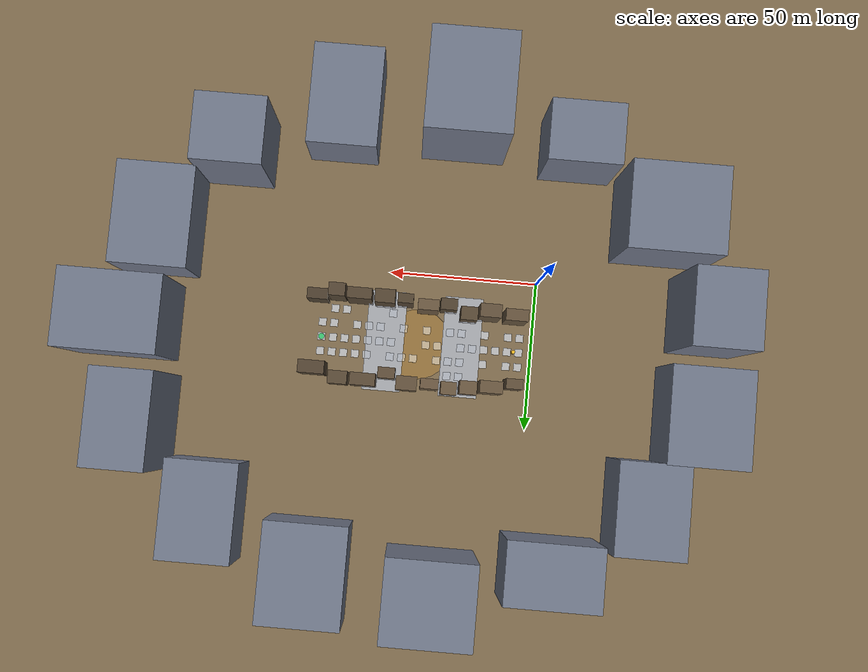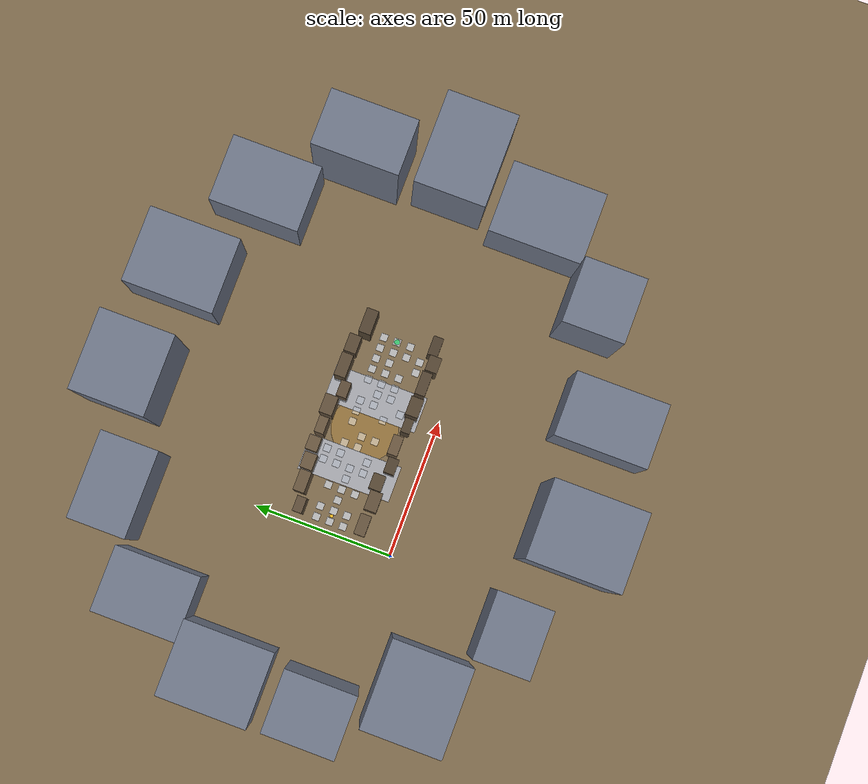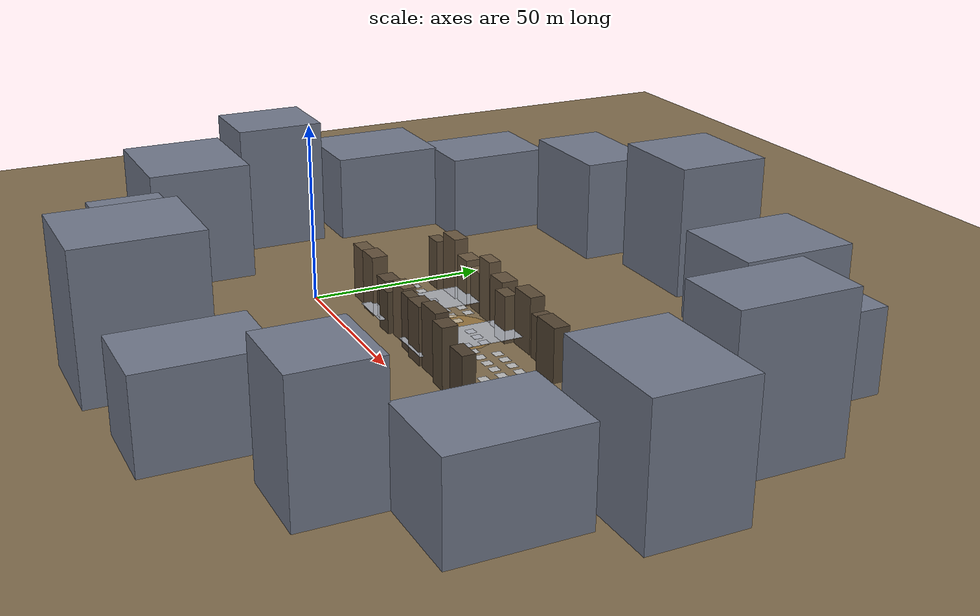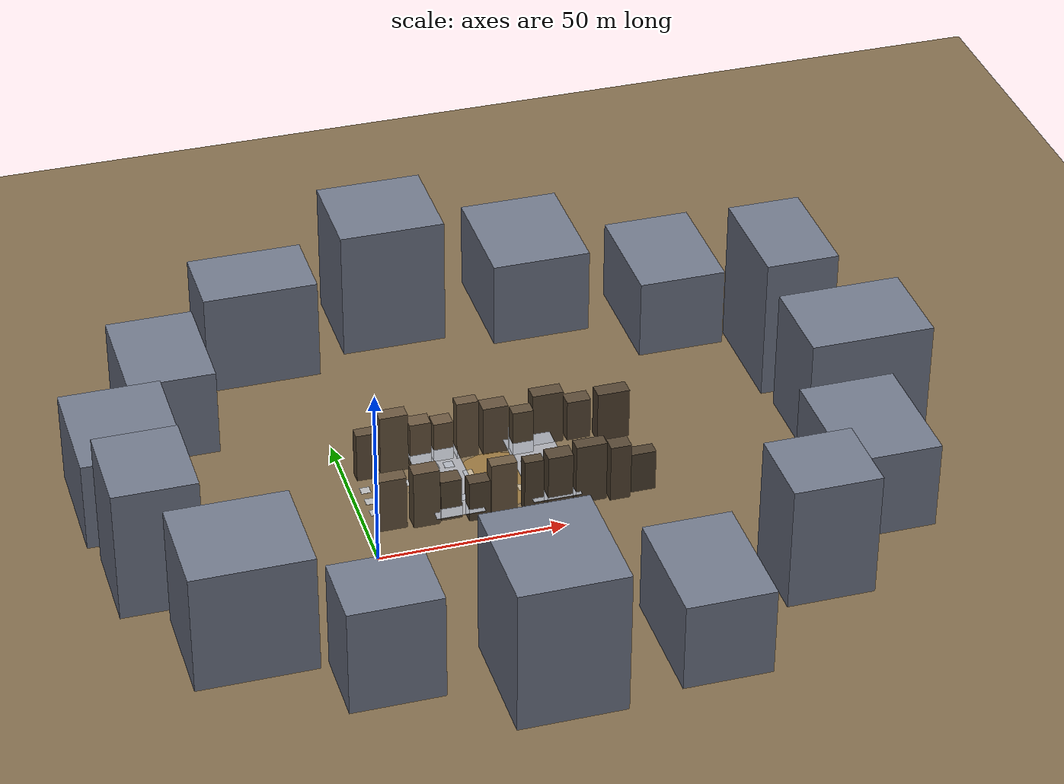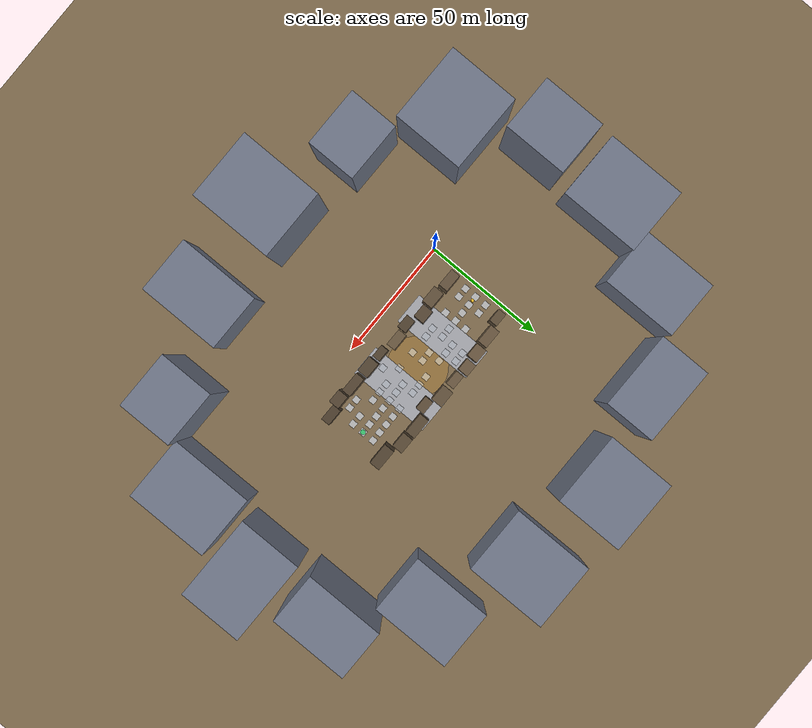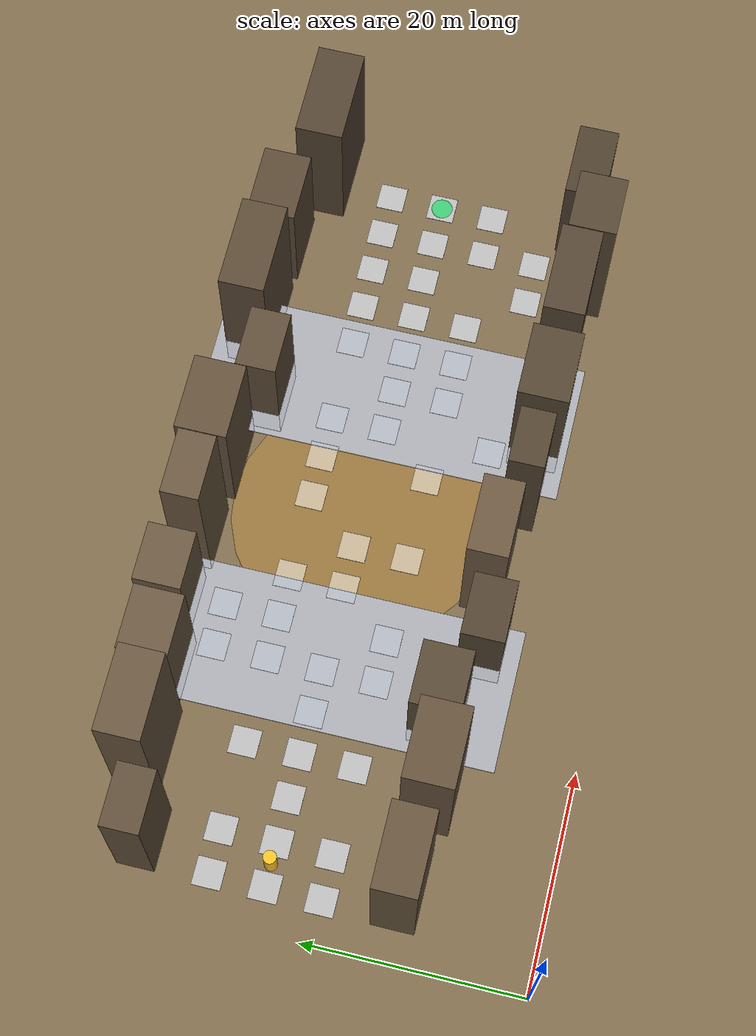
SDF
<sdf version="1.6">
 <world name="canyon">
  <gravity>0 0 -9.81</gravity>
  <scene>
   <ambient>0.5 0.52 0.55 1</ambient>
   <background>0.66 0.70 0.76 1</background>
   <shadows>true</shadows>
   <fog>
    <color>0.66 0.70 0.76 1</color>
    <type>linear</type>
    <start>16</start>
    <end>90</end>
    <density>0.05</density>
   </fog>
  </scene>
  <light name="sun" type="directional">
   <pose>0 0 40 0 0 0</pose>
   <diffuse>0.9 0.9 0.9 1</diffuse>
   <specular>0.2 0.2 0.2 1</specular>
   <direction>-0.4 0.3 -0.9</direction>
  </light>
  <model name="ground">
   <static>true</static>
   <link name="link">
    <collision name="c"><geometry><plane><normal>0 0 1</normal><size>400 400</size></plane></geometry></collision>
    <visual name="v">
     <geometry><plane><normal>0 0 1</normal><size>400 400</size></plane></geometry>
     <material><ambient>0.5 0.42 0.3</ambient><diffuse>0.5 0.42 0.3</diffuse></material>
    </visual>
   </link>
  </model>
  <model name="mtn0">
   <static>true</static>
   <pose>137.000 24.000 17.208 0 0 0</pose>
   <link name="l">
    <collision name="c">
     <geometry><box><size>33.62708577581435 25.573056538311704 34.41625981408046</size></box></geometry>
    </collision>
    <visual name="v">
     <geometry><box><size>33.62708577581435 25.573056538311704 34.41625981408046</size></box></geometry>
     <material><ambient>0.44 0.47 0.54 1</ambient><diffuse>0.44 0.47 0.54 1</diffuse></material>
    </visual>
   </link>
  </model>
  <model name="mtn1">
   <static>true</static>
   <pose>128.527 57.352 20.409 0 0 0</pose>
   <link name="l">
    <collision name="c">
     <geometry><box><size>20.093757560108525 31.246686860881958 40.81746338865422</size></box></geometry>
    </collision>
    <visual name="v">
     <geometry><box><size>20.093757560108525 31.246686860881958 40.81746338865422</size></box></geometry>
     <material><ambient>0.44 0.47 0.54 1</ambient><diffuse>0.44 0.47 0.54 1</diffuse></material>
    </visual>
   </link>
  </model>
  <model name="mtn2">
   <static>true</static>
   <pose>104.575 84.938 11.490 0 0 0</pose>
   <link name="l">
    <collision name="c">
     <geometry><box><size>24.15700107375013 32.60809845479548 22.979418164290088</size></box></geometry>
    </collision>
    <visual name="v">
     <geometry><box><size>24.15700107375013 32.60809845479548 22.979418164290088</size></box></geometry>
     <material><ambient>0.44 0.47 0.54 1</ambient><diffuse>0.44 0.47 0.54 1</diffuse></material>
    </visual>
   </link>
  </model>
  <model name="mtn3">
   <static>true</static>
   <pose>69.284 101.987 12.482 0 0 0</pose>
   <link name="l">
    <collision name="c">
     <geometry><box><size>27.464059783188464 33.05515322057159 24.963242868238584</size></box></geometry>
    </collision>
    <visual name="v">
     <geometry><box><size>27.464059783188464 33.05515322057159 24.963242868238584</size></box></geometry>
     <material><ambient>0.44 0.47 0.54 1</ambient><diffuse>0.44 0.47 0.54 1</diffuse></material>
    </visual>
   </link>
  </model>
  <model name="mtn4">
   <static>true</static>
   <pose>28.756 105.551 18.709 0 0 0</pose>
   <link name="l">
    <collision name="c">
     <geometry><box><size>29.100050304354216 26.85661630251999 37.41788751098236</size></box></geometry>
    </collision>
    <visual name="v">
     <geometry><box><size>29.100050304354216 26.85661630251999 37.41788751098236</size></box></geometry>
     <material><ambient>0.44 0.47 0.54 1</ambient><diffuse>0.44 0.47 0.54 1</diffuse></material>
    </visual>
   </link>
  </model>
  <model name="mtn5">
   <static>true</static>
   <pose>-10.000 95.014 14.680 0 0 0</pose>
   <link name="l">
    <collision name="c">
     <geometry><box><size>31.36055062037382 20.82549892988621 29.35941411119095</size></box></geometry>
    </collision>
    <visual name="v">
     <geometry><box><size>31.36055062037382 20.82549892988621 29.35941411119095</size></box></geometry>
     <material><ambient>0.44 0.47 0.54 1</ambient><diffuse>0.44 0.47 0.54 1</diffuse></material>
    </visual>
   </link>
  </model>
  <model name="mtn6">
   <static>true</static>
   <pose>-40.284 72.198 12.530 0 0 0</pose>
   <link name="l">
    <collision name="c">
     <geometry><box><size>23.468262365928783 30.710834222493787 25.060907175114885</size></box></geometry>
    </collision>
    <visual name="v">
     <geometry><box><size>23.468262365928783 30.710834222493787 25.060907175114885</size></box></geometry>
     <material><ambient>0.44 0.47 0.54 1</ambient><diffuse>0.44 0.47 0.54 1</diffuse></material>
    </visual>
   </link>
  </model>
  <model name="mtn7">
   <static>true</static>
   <pose>-56.858 41.049 12.695 0 0 0</pose>
   <link name="l">
    <collision name="c">
     <geometry><box><size>27.069270103609107 32.42358545844061 25.38981370130442</size></box></geometry>
    </collision>
    <visual name="v">
     <geometry><box><size>27.069270103609107 32.42358545844061 25.38981370130442</size></box></geometry>
     <material><ambient>0.44 0.47 0.54 1</ambient><diffuse>0.44 0.47 0.54 1</diffuse></material>
    </visual>
   </link>
  </model>
  <model name="mtn8">
   <static>true</static>
   <pose>-56.858 6.951 18.651 0 0 0</pose>
   <link name="l">
    <collision name="c">
     <geometry><box><size>22.086840507969438 25.535729628198563 37.301519949549174</size></box></geometry>
    </collision>
    <visual name="v">
     <geometry><box><size>22.086840507969438 25.535729628198563 37.301519949549174</size></box></geometry>
     <material><ambient>0.44 0.47 0.54 1</ambient><diffuse>0.44 0.47 0.54 1</diffuse></material>
    </visual>
   </link>
  </model>
  <model name="mtn9">
   <static>true</static>
   <pose>-40.284 -24.198 16.825 0 0 0</pose>
   <link name="l">
    <collision name="c">
     <geometry><box><size>31.477350154209745 28.709685678196838 33.65045452618929</size></box></geometry>
    </collision>
    <visual name="v">
     <geometry><box><size>31.477350154209745 28.709685678196838 33.65045452618929</size></box></geometry>
     <material><ambient>0.44 0.47 0.54 1</ambient><diffuse>0.44 0.47 0.54 1</diffuse></material>
    </visual>
   </link>
  </model>
  <model name="mtn10">
   <static>true</static>
   <pose>-10.000 -47.014 14.957 0 0 0</pose>
   <link name="l">
    <collision name="c">
     <geometry><box><size>24.36838257644251 20.199187913192404 29.91423781848683</size></box></geometry>
    </collision>
    <visual name="v">
     <geometry><box><size>24.36838257644251 20.199187913192404 29.91423781848683</size></box></geometry>
     <material><ambient>0.44 0.47 0.54 1</ambient><diffuse>0.44 0.47 0.54 1</diffuse></material>
    </visual>
   </link>
  </model>
  <model name="mtn11">
   <static>true</static>
   <pose>28.756 -57.551 20.137 0 0 0</pose>
   <link name="l">
    <collision name="c">
     <geometry><box><size>28.23786906837271 33.28913602947771 40.27437584584879</size></box></geometry>
    </collision>
    <visual name="v">
     <geometry><box><size>28.23786906837271 33.28913602947771 40.27437584584879</size></box></geometry>
     <material><ambient>0.44 0.47 0.54 1</ambient><diffuse>0.44 0.47 0.54 1</diffuse></material>
    </visual>
   </link>
  </model>
  <model name="mtn12">
   <static>true</static>
   <pose>69.284 -53.987 12.336 0 0 0</pose>
   <link name="l">
    <collision name="c">
     <geometry><box><size>23.357127503681948 33.48454281872263 24.671474519663416</size></box></geometry>
    </collision>
    <visual name="v">
     <geometry><box><size>23.357127503681948 33.48454281872263 24.671474519663416</size></box></geometry>
     <material><ambient>0.44 0.47 0.54 1</ambient><diffuse>0.44 0.47 0.54 1</diffuse></material>
    </visual>
   </link>
  </model>
  <model name="mtn13">
   <static>true</static>
   <pose>104.575 -36.938 17.583 0 0 0</pose>
   <link name="l">
    <collision name="c">
     <geometry><box><size>23.379449526681093 22.11626155236947 35.16540045764886</size></box></geometry>
    </collision>
    <visual name="v">
     <geometry><box><size>23.379449526681093 22.11626155236947 35.16540045764886</size></box></geometry>
     <material><ambient>0.44 0.47 0.54 1</ambient><diffuse>0.44 0.47 0.54 1</diffuse></material>
    </visual>
   </link>
  </model>
  <model name="mtn14">
   <static>true</static>
   <pose>128.527 -9.352 12.371 0 0 0</pose>
   <link name="l">
    <collision name="c">
     <geometry><box><size>25.917975487048626 33.92912365366834 24.742579242330923</size></box></geometry>
    </collision>
    <visual name="v">
     <geometry><box><size>25.917975487048626 33.92912365366834 24.742579242330923</size></box></geometry>
     <material><ambient>0.44 0.47 0.54 1</ambient><diffuse>0.44 0.47 0.54 1</diffuse></material>
    </visual>
   </link>
  </model>
  <model name="wall0">
   <static>true</static>
   <pose>6.734 12.561 7.846 0 0 0</pose>
   <link name="l">
    <collision name="c">
     <geometry><box><size>7.4685659066798085 3.9129744395921193 15.691238074463357</size></box></geometry>
    </collision>
    <visual name="v">
     <geometry><box><size>7.4685659066798085 3.9129744395921193 15.691238074463357</size></box></geometry>
     <material>
      <ambient>0.39727526522324585 0.3257657174830616 0.2383651591339475 1</ambient>
      <diffuse>0.39727526522324585 0.3257657174830616 0.2383651591339475 1</diffuse>
     </material>
    </visual>
   </link>
  </model>
  <model name="wall1">
   <static>true</static>
   <pose>15.534 11.935 8.433 0 0 0</pose>
   <link name="l">
    <collision name="c">
     <geometry><box><size>7.082239310762457 4.456064865458245 16.86549293572219</size></box></geometry>
    </collision>
    <visual name="v">
     <geometry><box><size>7.082239310762457 4.456064865458245 16.86549293572219</size></box></geometry>
     <material>
      <ambient>0.38435871781861297 0.31517414861126264 0.23061523069116777 1</ambient>
      <diffuse>0.38435871781861297 0.31517414861126264 0.23061523069116777 1</diffuse>
     </material>
    </visual>
   </link>
  </model>
  <model name="wall2">
   <static>true</static>
   <pose>22.358 12.988 6.044 0 0 0</pose>
   <link name="l">
    <collision name="c">
     <geometry><box><size>5.677168756054198 4.493604080861285 12.08798425679653</size></box></geometry>
    </collision>
    <visual name="v">
     <geometry><box><size>5.677168756054198 4.493604080861285 12.08798425679653</size></box></geometry>
     <material>
      <ambient>0.3422740025250744 0.280664682070561 0.20536440151504462 1</ambient>
      <diffuse>0.3422740025250744 0.280664682070561 0.20536440151504462 1</diffuse>
     </material>
    </visual>
   </link>
  </model>
  <model name="wall3">
   <static>true</static>
   <pose>29.326 10.441 5.915 0 0 0</pose>
   <link name="l">
    <collision name="c">
     <geometry><box><size>5.676948280539545 3.8818326472968767 11.830518253238814</size></box></geometry>
    </collision>
    <visual name="v">
     <geometry><box><size>5.676948280539545 3.8818326472968767 11.830518253238814</size></box></geometry>
     <material>
      <ambient>0.31551927371789146 0.258725804448671 0.18931156423073486 1</ambient>
      <diffuse>0.31551927371789146 0.258725804448671 0.18931156423073486 1</diffuse>
     </material>
    </visual>
   </link>
  </model>
  <model name="wall4">
   <static>true</static>
   <pose>36.245 11.588 7.641 0 0 0</pose>
   <link name="l">
    <collision name="c">
     <geometry><box><size>7.030160569112029 3.636519156568742 15.282166505052773</size></box></geometry>
    </collision>
    <visual name="v">
     <geometry><box><size>7.030160569112029 3.636519156568742 15.282166505052773</size></box></geometry>
     <material>
      <ambient>0.4180317708447288 0.3427860520926776 0.2508190625068373 1</ambient>
      <diffuse>0.4180317708447288 0.3427860520926776 0.2508190625068373 1</diffuse>
     </material>
    </visual>
   </link>
  </model>
  <model name="wall5">
   <static>true</static>
   <pose>43.949 10.113 7.709 0 0 0</pose>
   <link name="l">
    <collision name="c">
     <geometry><box><size>5.220341781744004 3.18101894535966 15.418232116284063</size></box></geometry>
    </collision>
    <visual name="v">
     <geometry><box><size>5.220341781744004 3.18101894535966 15.418232116284063</size></box></geometry>
     <material>
      <ambient>0.319702007143858 0.2621556458579635 0.1918212042863148 1</ambient>
      <diffuse>0.319702007143858 0.2621556458579635 0.1918212042863148 1</diffuse>
     </material>
    </visual>
   </link>
  </model>
  <model name="wall6">
   <static>true</static>
   <pose>50.833 9.989 8.036 0 0 0</pose>
   <link name="l">
    <collision name="c">
     <geometry><box><size>6.757701962871293 4.554039063383198 16.0712569386836</size></box></geometry>
    </collision>
    <visual name="v">
     <geometry><box><size>6.757701962871293 4.554039063383198 16.0712569386836</size></box></geometry>
     <material>
      <ambient>0.3268361314222216 0.2680056277662217 0.19610167885333296 1</ambient>
      <diffuse>0.3268361314222216 0.2680056277662217 0.19610167885333296 1</diffuse>
     </material>
    </visual>
   </link>
  </model>
  <model name="wall7">
   <static>true</static>
   <pose>59.299 9.925 8.831 0 0 0</pose>
   <link name="l">
    <collision name="c">
     <geometry><box><size>8.299724682569519 3.6884307800559695 17.661967744755508</size></box></geometry>
    </collision>
    <visual name="v">
     <geometry><box><size>8.299724682569519 3.6884307800559695 17.661967744755508</size></box></geometry>
     <material>
      <ambient>0.3284401142654181 0.26932089369764284 0.19706406855925085 1</ambient>
      <diffuse>0.3284401142654181 0.26932089369764284 0.19706406855925085 1</diffuse>
     </material>
    </visual>
   </link>
  </model>
  <model name="wall8">
   <static>true</static>
   <pose>66.910 9.129 8.283 0 0 0</pose>
   <link name="l">
    <collision name="c">
     <geometry><box><size>5.5760659301099595 4.344638200037168 16.56541865630666</size></box></geometry>
    </collision>
    <visual name="v">
     <geometry><box><size>5.5760659301099595 4.344638200037168 16.56541865630666</size></box></geometry>
     <material>
      <ambient>0.33047419392604216 0.27098883901935455 0.1982845163556253 1</ambient>
      <diffuse>0.33047419392604216 0.27098883901935455 0.1982845163556253 1</diffuse>
     </material>
    </visual>
   </link>
  </model>
  <model name="wall9">
   <static>true</static>
   <pose>73.617 10.586 5.940 0 0 0</pose>
   <link name="l">
    <collision name="c">
     <geometry><box><size>6.912769464188612 3.6557295062686297 11.879155341150454</size></box></geometry>
    </collision>
    <visual name="v">
     <geometry><box><size>6.912769464188612 3.6557295062686297 11.879155341150454</size></box></geometry>
     <material>
      <ambient>0.3001821223331606 0.2461493403131917 0.18010927339989635 1</ambient>
      <diffuse>0.3001821223331606 0.2461493403131917 0.18010927339989635 1</diffuse>
     </material>
    </visual>
   </link>
  </model>
  <model name="wall10">
   <static>true</static>
   <pose>5.783 35.313 7.141 0 0 0</pose>
   <link name="l">
    <collision name="c">
     <geometry><box><size>5.565114522587271 3.3983146545459935 14.281392176706083</size></box></geometry>
    </collision>
    <visual name="v">
     <geometry><box><size>5.565114522587271 3.3983146545459935 14.281392176706083</size></box></geometry>
     <material>
      <ambient>0.37324337399848906 0.306059566678761 0.22394602439909342 1</ambient>
      <diffuse>0.37324337399848906 0.306059566678761 0.22394602439909342 1</diffuse>
     </material>
    </visual>
   </link>
  </model>
  <model name="wall11">
   <static>true</static>
   <pose>13.549 37.103 8.746 0 0 0</pose>
   <link name="l">
    <collision name="c">
     <geometry><box><size>7.629716193407861 4.046209387184796 17.491018793072897</size></box></geometry>
    </collision>
    <visual name="v">
     <geometry><box><size>7.629716193407861 4.046209387184796 17.491018793072897</size></box></geometry>
     <material>
      <ambient>0.41085780340005174 0.33690339878804243 0.24651468204003102 1</ambient>
      <diffuse>0.41085780340005174 0.33690339878804243 0.24651468204003102 1</diffuse>
     </material>
    </visual>
   </link>
  </model>
  <model name="wall12">
   <static>true</static>
   <pose>20.873 37.791 6.694 0 0 0</pose>
   <link name="l">
    <collision name="c">
     <geometry><box><size>5.8023645461574125 4.480444232411182 13.388358716131368</size></box></geometry>
    </collision>
    <visual name="v">
     <geometry><box><size>5.8023645461574125 4.480444232411182 13.388358716131368</size></box></geometry>
     <material>
      <ambient>0.41649614543351354 0.3415268392554811 0.2498976872601081 1</ambient>
      <diffuse>0.41649614543351354 0.3415268392554811 0.2498976872601081 1</diffuse>
     </material>
    </visual>
   </link>
  </model>
  <model name="wall13">
   <static>true</static>
   <pose>27.297 38.495 5.916 0 0 0</pose>
   <link name="l">
    <collision name="c">
     <geometry><box><size>5.309855112330501 4.303146502372595 11.831230271849304</size></box></geometry>
    </collision>
    <visual name="v">
     <geometry><box><size>5.309855112330501 4.303146502372595 11.831230271849304</size></box></geometry>
     <material>
      <ambient>0.4161984878407404 0.3412827600294071 0.24971909270444426 1</ambient>
      <diffuse>0.4161984878407404 0.3412827600294071 0.24971909270444426 1</diffuse>
     </material>
    </visual>
   </link>
  </model>
  <model name="wall14">
   <static>true</static>
   <pose>33.880 37.756 8.632 0 0 0</pose>
   <link name="l">
    <collision name="c">
     <geometry><box><size>5.950760988211346 3.382744457835037 17.26365815791782</size></box></geometry>
    </collision>
    <visual name="v">
     <geometry><box><size>5.950760988211346 3.382744457835037 17.26365815791782</size></box></geometry>
     <material>
      <ambient>0.4149491005980416 0.3402582624903941 0.24896946035882495 1</ambient>
      <diffuse>0.4149491005980416 0.3402582624903941 0.24896946035882495 1</diffuse>
     </material>
    </visual>
   </link>
  </model>
  <model name="wall15">
   <static>true</static>
   <pose>41.478 38.084 7.246 0 0 0</pose>
   <link name="l">
    <collision name="c">
     <geometry><box><size>6.946676147761175 4.673202011245264 14.491550882584074</size></box></geometry>
    </collision>
    <visual name="v">
     <geometry><box><size>6.946676147761175 4.673202011245264 14.491550882584074</size></box></geometry>
     <material>
      <ambient>0.383448357929086 0.3144276535018505 0.2300690147574516 1</ambient>
      <diffuse>0.383448357929086 0.3144276535018505 0.2300690147574516 1</diffuse>
     </material>
    </visual>
   </link>
  </model>
  <model name="wall16">
   <static>true</static>
   <pose>48.373 35.200 6.643 0 0 0</pose>
   <link name="l">
    <collision name="c">
     <geometry><box><size>5.722474911209101 3.6437953970830934 13.286801033728516</size></box></geometry>
    </collision>
    <visual name="v">
     <geometry><box><size>5.722474911209101 3.6437953970830934 13.286801033728516</size></box></geometry>
     <material>
      <ambient>0.36816589763617574 0.3018960360616641 0.22089953858170544 1</ambient>
      <diffuse>0.36816589763617574 0.3018960360616641 0.22089953858170544 1</diffuse>
     </material>
    </visual>
   </link>
  </model>
  <model name="wall17">
   <static>true</static>
   <pose>55.997 38.018 7.893 0 0 0</pose>
   <link name="l">
    <collision name="c">
     <geometry><box><size>8.49439337883981 4.127649308462332 15.785860218483883</size></box></geometry>
    </collision>
    <visual name="v">
     <geometry><box><size>8.49439337883981 4.127649308462332 15.785860218483883</size></box></geometry>
     <material>
      <ambient>0.35557456948496885 0.29157114697767444 0.2133447416909813 1</ambient>
      <diffuse>0.35557456948496885 0.29157114697767444 0.2133447416909813 1</diffuse>
     </material>
    </visual>
   </link>
  </model>
  <model name="wall18">
   <static>true</static>
   <pose>64.541 37.959 6.029 0 0 0</pose>
   <link name="l">
    <collision name="c">
     <geometry><box><size>6.503570567354584 4.38732750404908 12.058272514927934</size></box></geometry>
    </collision>
    <visual name="v">
     <geometry><box><size>6.503570567354584 4.38732750404908 12.058272514927934</size></box></geometry>
     <material>
      <ambient>0.3485900015129721 0.2858438012406371 0.20915400090778324 1</ambient>
      <diffuse>0.3485900015129721 0.2858438012406371 0.20915400090778324 1</diffuse>
     </material>
    </visual>
   </link>
  </model>
  <model name="wall19">
   <static>true</static>
   <pose>73.347 35.309 7.383 0 0 0</pose>
   <link name="l">
    <collision name="c">
     <geometry><box><size>8.829186046494943 4.342710142345547 14.766244171261626</size></box></geometry>
    </collision>
    <visual name="v">
     <geometry><box><size>8.829186046494943 4.342710142345547 14.766244171261626</size></box></geometry>
     <material>
      <ambient>0.32324696517681606 0.26506251144498916 0.19394817910608964 1</ambient>
      <diffuse>0.32324696517681606 0.26506251144498916 0.19394817910608964 1</diffuse>
     </material>
    </visual>
   </link>
  </model>
  <model name="haze0">
   <static>true</static>
   <pose>50.000 24.000 3.60 0 0 0</pose>
   <link name="l">
    <visual name="v">
     <geometry><box><size>13.0 34.0 0.15</size></box></geometry>
     <material><ambient>0.72 0.74 0.78 0.88</ambient><diffuse>0.72 0.74 0.78 0.88</diffuse></material>
     <transparency>0.12</transparency>
    </visual>
   </link>
  </model>
  <model name="haze1">
   <static>true</static>
   <pose>24.000 24.000 3.60 0 0 0</pose>
   <link name="l">
    <visual name="v">
     <geometry><box><size>13.0 34.0 0.15</size></box></geometry>
     <material><ambient>0.72 0.74 0.78 0.88</ambient><diffuse>0.72 0.74 0.78 0.88</diffuse></material>
     <transparency>0.12</transparency>
    </visual>
   </link>
  </model>
  <model name="hard_patch">
   <static>true</static>
   <pose>39.000 24.000 0.03 0 0 0</pose>
   <link name="l">
    <visual name="v">
     <geometry><cylinder><radius>12.0</radius><length>0.3</length></cylinder></geometry>
     <material><ambient>0.96 0.62 0.04 0.14</ambient><diffuse>0.96 0.62 0.04 0.14</diffuse></material>
    </visual>
   </link>
  </model>
  <model name="aruco0">
   <static>true</static>
   <pose>4.000 19.000 0.02 0 0 0</pose>
   <link name="l">
    <visual name="v">
     <geometry><box><size>2.6 2.6 0.02</size></box></geometry>
     <material>
      <script><uri>file://materials/scripts</uri><uri>file://materials/textures</uri><name>aruco/0</name></script>
     </material>
    </visual>
   </link>
  </model>
  <model name="aruco1">
   <static>true</static>
   <pose>4.000 24.000 0.02 0 0 0</pose>
   <link name="l">
    <visual name="v">
     <geometry><box><size>2.6 2.6 0.02</size></box></geometry>
     <material>
      <script><uri>file://materials/scripts</uri><uri>file://materials/textures</uri><name>aruco/1</name></script>
     </material>
    </visual>
   </link>
  </model>
  <model name="aruco2">
   <static>true</static>
   <pose>4.000 29.000 0.02 0 0 0</pose>
   <link name="l">
    <visual name="v">
     <geometry><box><size>2.6 2.6 0.02</size></box></geometry>
     <material>
      <script><uri>file://materials/scripts</uri><uri>file://materials/textures</uri><name>aruco/2</name></script>
     </material>
    </visual>
   </link>
  </model>
  <model name="aruco3">
   <static>true</static>
   <pose>8.000 19.000 0.02 0 0 0</pose>
   <link name="l">
    <visual name="v">
     <geometry><box><size>2.6 2.6 0.02</size></box></geometry>
     <material>
      <script><uri>file://materials/scripts</uri><uri>file://materials/textures</uri><name>aruco/3</name></script>
     </material>
    </visual>
   </link>
  </model>
  <model name="aruco4">
   <static>true</static>
   <pose>8.000 24.000 0.02 0 0 0</pose>
   <link name="l">
    <visual name="v">
     <geometry><box><size>2.6 2.6 0.02</size></box></geometry>
     <material>
      <script><uri>file://materials/scripts</uri><uri>file://materials/textures</uri><name>aruco/4</name></script>
     </material>
    </visual>
   </link>
  </model>
  <model name="aruco5">
   <static>true</static>
   <pose>8.000 29.000 0.02 0 0 0</pose>
   <link name="l">
    <visual name="v">
     <geometry><box><size>2.6 2.6 0.02</size></box></geometry>
     <material>
      <script><uri>file://materials/scripts</uri><uri>file://materials/textures</uri><name>aruco/5</name></script>
     </material>
    </visual>
   </link>
  </model>
  <model name="aruco6">
   <static>true</static>
   <pose>12.000 24.000 0.02 0 0 0</pose>
   <link name="l">
    <visual name="v">
     <geometry><box><size>2.6 2.6 0.02</size></box></geometry>
     <material>
      <script><uri>file://materials/scripts</uri><uri>file://materials/textures</uri><name>aruco/6</name></script>
     </material>
    </visual>
   </link>
  </model>
  <model name="aruco7">
   <static>true</static>
   <pose>16.000 19.000 0.02 0 0 0</pose>
   <link name="l">
    <visual name="v">
     <geometry><box><size>2.6 2.6 0.02</size></box></geometry>
     <material>
      <script><uri>file://materials/scripts</uri><uri>file://materials/textures</uri><name>aruco/7</name></script>
     </material>
    </visual>
   </link>
  </model>
  <model name="aruco8">
   <static>true</static>
   <pose>16.000 24.000 0.02 0 0 0</pose>
   <link name="l">
    <visual name="v">
     <geometry><box><size>2.6 2.6 0.02</size></box></geometry>
     <material>
      <script><uri>file://materials/scripts</uri><uri>file://materials/textures</uri><name>aruco/8</name></script>
     </material>
    </visual>
   </link>
  </model>
  <model name="aruco9">
   <static>true</static>
   <pose>16.000 29.000 0.02 0 0 0</pose>
   <link name="l">
    <visual name="v">
     <geometry><box><size>2.6 2.6 0.02</size></box></geometry>
     <material>
      <script><uri>file://materials/scripts</uri><uri>file://materials/textures</uri><name>aruco/9</name></script>
     </material>
    </visual>
   </link>
  </model>
  <model name="aruco10">
   <static>true</static>
   <pose>20.000 24.000 0.02 0 0 0</pose>
   <link name="l">
    <visual name="v">
     <geometry><box><size>2.6 2.6 0.02</size></box></geometry>
     <material>
      <script><uri>file://materials/scripts</uri><uri>file://materials/textures</uri><name>aruco/10</name></script>
     </material>
    </visual>
   </link>
  </model>
  <model name="aruco11">
   <static>true</static>
   <pose>24.000 19.000 0.02 0 0 0</pose>
   <link name="l">
    <visual name="v">
     <geometry><box><size>2.6 2.6 0.02</size></box></geometry>
     <material>
      <script><uri>file://materials/scripts</uri><uri>file://materials/textures</uri><name>aruco/11</name></script>
     </material>
    </visual>
   </link>
  </model>
  <model name="aruco12">
   <static>true</static>
   <pose>24.000 24.000 0.02 0 0 0</pose>
   <link name="l">
    <visual name="v">
     <geometry><box><size>2.6 2.6 0.02</size></box></geometry>
     <material>
      <script><uri>file://materials/scripts</uri><uri>file://materials/textures</uri><name>aruco/12</name></script>
     </material>
    </visual>
   </link>
  </model>
  <model name="aruco13">
   <static>true</static>
   <pose>24.000 29.000 0.02 0 0 0</pose>
   <link name="l">
    <visual name="v">
     <geometry><box><size>2.6 2.6 0.02</size></box></geometry>
     <material>
      <script><uri>file://materials/scripts</uri><uri>file://materials/textures</uri><name>aruco/13</name></script>
     </material>
    </visual>
   </link>
  </model>
  <model name="aruco14">
   <static>true</static>
   <pose>24.000 34.000 0.02 0 0 0</pose>
   <link name="l">
    <visual name="v">
     <geometry><box><size>2.6 2.6 0.02</size></box></geometry>
     <material>
      <script><uri>file://materials/scripts</uri><uri>file://materials/textures</uri><name>aruco/14</name></script>
     </material>
    </visual>
   </link>
  </model>
  <model name="aruco15">
   <static>true</static>
   <pose>28.000 19.000 0.02 0 0 0</pose>
   <link name="l">
    <visual name="v">
     <geometry><box><size>2.6 2.6 0.02</size></box></geometry>
     <material>
      <script><uri>file://materials/scripts</uri><uri>file://materials/textures</uri><name>aruco/15</name></script>
     </material>
    </visual>
   </link>
  </model>
  <model name="aruco16">
   <static>true</static>
   <pose>28.000 29.000 0.02 0 0 0</pose>
   <link name="l">
    <visual name="v">
     <geometry><box><size>2.6 2.6 0.02</size></box></geometry>
     <material>
      <script><uri>file://materials/scripts</uri><uri>file://materials/textures</uri><name>aruco/16</name></script>
     </material>
    </visual>
   </link>
  </model>
  <model name="aruco17">
   <static>true</static>
   <pose>28.000 34.000 0.02 0 0 0</pose>
   <link name="l">
    <visual name="v">
     <geometry><box><size>2.6 2.6 0.02</size></box></geometry>
     <material>
      <script><uri>file://materials/scripts</uri><uri>file://materials/textures</uri><name>aruco/17</name></script>
     </material>
    </visual>
   </link>
  </model>
  <model name="aruco18">
   <static>true</static>
   <pose>32.000 24.000 0.02 0 0 0</pose>
   <link name="l">
    <visual name="v">
     <geometry><box><size>2.6 2.6 0.02</size></box></geometry>
     <material>
      <script><uri>file://materials/scripts</uri><uri>file://materials/textures</uri><name>aruco/18</name></script>
     </material>
    </visual>
   </link>
  </model>
  <model name="aruco19">
   <static>true</static>
   <pose>32.000 29.000 0.02 0 0 0</pose>
   <link name="l">
    <visual name="v">
     <geometry><box><size>2.6 2.6 0.02</size></box></geometry>
     <material>
      <script><uri>file://materials/scripts</uri><uri>file://materials/textures</uri><name>aruco/19</name></script>
     </material>
    </visual>
   </link>
  </model>
  <model name="aruco20">
   <static>true</static>
   <pose>36.000 19.000 0.02 0 0 0</pose>
   <link name="l">
    <visual name="v">
     <geometry><box><size>2.6 2.6 0.02</size></box></geometry>
     <material>
      <script><uri>file://materials/scripts</uri><uri>file://materials/textures</uri><name>aruco/20</name></script>
     </material>
    </visual>
   </link>
  </model>
  <model name="aruco21">
   <static>true</static>
   <pose>36.000 24.000 0.02 0 0 0</pose>
   <link name="l">
    <visual name="v">
     <geometry><box><size>2.6 2.6 0.02</size></box></geometry>
     <material>
      <script><uri>file://materials/scripts</uri><uri>file://materials/textures</uri><name>aruco/21</name></script>
     </material>
    </visual>
   </link>
  </model>
  <model name="aruco22">
   <static>true</static>
   <pose>40.000 29.000 0.02 0 0 0</pose>
   <link name="l">
    <visual name="v">
     <geometry><box><size>2.6 2.6 0.02</size></box></geometry>
     <material>
      <script><uri>file://materials/scripts</uri><uri>file://materials/textures</uri><name>aruco/22</name></script>
     </material>
    </visual>
   </link>
  </model>
  <model name="aruco23">
   <static>true</static>
   <pose>44.000 19.000 0.02 0 0 0</pose>
   <link name="l">
    <visual name="v">
     <geometry><box><size>2.6 2.6 0.02</size></box></geometry>
     <material>
      <script><uri>file://materials/scripts</uri><uri>file://materials/textures</uri><name>aruco/23</name></script>
     </material>
    </visual>
   </link>
  </model>
  <model name="aruco24">
   <static>true</static>
   <pose>44.000 29.000 0.02 0 0 0</pose>
   <link name="l">
    <visual name="v">
     <geometry><box><size>2.6 2.6 0.02</size></box></geometry>
     <material>
      <script><uri>file://materials/scripts</uri><uri>file://materials/textures</uri><name>aruco/24</name></script>
     </material>
    </visual>
   </link>
  </model>
  <model name="aruco25">
   <static>true</static>
   <pose>48.000 14.000 0.02 0 0 0</pose>
   <link name="l">
    <visual name="v">
     <geometry><box><size>2.6 2.6 0.02</size></box></geometry>
     <material>
      <script><uri>file://materials/scripts</uri><uri>file://materials/textures</uri><name>aruco/25</name></script>
     </material>
    </visual>
   </link>
  </model>
  <model name="aruco26">
   <static>true</static>
   <pose>48.000 24.000 0.02 0 0 0</pose>
   <link name="l">
    <visual name="v">
     <geometry><box><size>2.6 2.6 0.02</size></box></geometry>
     <material>
      <script><uri>file://materials/scripts</uri><uri>file://materials/textures</uri><name>aruco/26</name></script>
     </material>
    </visual>
   </link>
  </model>
  <model name="aruco27">
   <static>true</static>
   <pose>48.000 29.000 0.02 0 0 0</pose>
   <link name="l">
    <visual name="v">
     <geometry><box><size>2.6 2.6 0.02</size></box></geometry>
     <material>
      <script><uri>file://materials/scripts</uri><uri>file://materials/textures</uri><name>aruco/27</name></script>
     </material>
    </visual>
   </link>
  </model>
  <model name="aruco28">
   <static>true</static>
   <pose>52.000 19.000 0.02 0 0 0</pose>
   <link name="l">
    <visual name="v">
     <geometry><box><size>2.6 2.6 0.02</size></box></geometry>
     <material>
      <script><uri>file://materials/scripts</uri><uri>file://materials/textures</uri><name>aruco/28</name></script>
     </material>
    </visual>
   </link>
  </model>
  <model name="aruco29">
   <static>true</static>
   <pose>52.000 24.000 0.02 0 0 0</pose>
   <link name="l">
    <visual name="v">
     <geometry><box><size>2.6 2.6 0.02</size></box></geometry>
     <material>
      <script><uri>file://materials/scripts</uri><uri>file://materials/textures</uri><name>aruco/29</name></script>
     </material>
    </visual>
   </link>
  </model>
  <model name="aruco30">
   <static>true</static>
   <pose>56.000 19.000 0.02 0 0 0</pose>
   <link name="l">
    <visual name="v">
     <geometry><box><size>2.6 2.6 0.02</size></box></geometry>
     <material>
      <script><uri>file://materials/scripts</uri><uri>file://materials/textures</uri><name>aruco/30</name></script>
     </material>
    </visual>
   </link>
  </model>
  <model name="aruco31">
   <static>true</static>
   <pose>56.000 24.000 0.02 0 0 0</pose>
   <link name="l">
    <visual name="v">
     <geometry><box><size>2.6 2.6 0.02</size></box></geometry>
     <material>
      <script><uri>file://materials/scripts</uri><uri>file://materials/textures</uri><name>aruco/31</name></script>
     </material>
    </visual>
   </link>
  </model>
  <model name="aruco32">
   <static>true</static>
   <pose>56.000 29.000 0.02 0 0 0</pose>
   <link name="l">
    <visual name="v">
     <geometry><box><size>2.6 2.6 0.02</size></box></geometry>
     <material>
      <script><uri>file://materials/scripts</uri><uri>file://materials/textures</uri><name>aruco/32</name></script>
     </material>
    </visual>
   </link>
  </model>
  <model name="aruco33">
   <static>true</static>
   <pose>60.000 19.000 0.02 0 0 0</pose>
   <link name="l">
    <visual name="v">
     <geometry><box><size>2.6 2.6 0.02</size></box></geometry>
     <material>
      <script><uri>file://materials/scripts</uri><uri>file://materials/textures</uri><name>aruco/33</name></script>
     </material>
    </visual>
   </link>
  </model>
  <model name="aruco34">
   <static>true</static>
   <pose>60.000 24.000 0.02 0 0 0</pose>
   <link name="l">
    <visual name="v">
     <geometry><box><size>2.6 2.6 0.02</size></box></geometry>
     <material>
      <script><uri>file://materials/scripts</uri><uri>file://materials/textures</uri><name>aruco/34</name></script>
     </material>
    </visual>
   </link>
  </model>
  <model name="aruco35">
   <static>true</static>
   <pose>60.000 29.000 0.02 0 0 0</pose>
   <link name="l">
    <visual name="v">
     <geometry><box><size>2.6 2.6 0.02</size></box></geometry>
     <material>
      <script><uri>file://materials/scripts</uri><uri>file://materials/textures</uri><name>aruco/35</name></script>
     </material>
    </visual>
   </link>
  </model>
  <model name="aruco36">
   <static>true</static>
   <pose>64.000 14.000 0.02 0 0 0</pose>
   <link name="l">
    <visual name="v">
     <geometry><box><size>2.6 2.6 0.02</size></box></geometry>
     <material>
      <script><uri>file://materials/scripts</uri><uri>file://materials/textures</uri><name>aruco/36</name></script>
     </material>
    </visual>
   </link>
  </model>
  <model name="aruco37">
   <static>true</static>
   <pose>64.000 24.000 0.02 0 0 0</pose>
   <link name="l">
    <visual name="v">
     <geometry><box><size>2.6 2.6 0.02</size></box></geometry>
     <material>
      <script><uri>file://materials/scripts</uri><uri>file://materials/textures</uri><name>aruco/37</name></script>
     </material>
    </visual>
   </link>
  </model>
  <model name="aruco38">
   <static>true</static>
   <pose>64.000 29.000 0.02 0 0 0</pose>
   <link name="l">
    <visual name="v">
     <geometry><box><size>2.6 2.6 0.02</size></box></geometry>
     <material>
      <script><uri>file://materials/scripts</uri><uri>file://materials/textures</uri><name>aruco/38</name></script>
     </material>
    </visual>
   </link>
  </model>
  <model name="aruco39">
   <static>true</static>
   <pose>68.000 14.000 0.02 0 0 0</pose>
   <link name="l">
    <visual name="v">
     <geometry><box><size>2.6 2.6 0.02</size></box></geometry>
     <material>
      <script><uri>file://materials/scripts</uri><uri>file://materials/textures</uri><name>aruco/39</name></script>
     </material>
    </visual>
   </link>
  </model>
  <model name="aruco40">
   <static>true</static>
   <pose>68.000 19.000 0.02 0 0 0</pose>
   <link name="l">
    <visual name="v">
     <geometry><box><size>2.6 2.6 0.02</size></box></geometry>
     <material>
      <script><uri>file://materials/scripts</uri><uri>file://materials/textures</uri><name>aruco/40</name></script>
     </material>
    </visual>
   </link>
  </model>
  <model name="aruco41">
   <static>true</static>
   <pose>68.000 24.000 0.02 0 0 0</pose>
   <link name="l">
    <visual name="v">
     <geometry><box><size>2.6 2.6 0.02</size></box></geometry>
     <material>
      <script><uri>file://materials/scripts</uri><uri>file://materials/textures</uri><name>aruco/41</name></script>
     </material>
    </visual>
   </link>
  </model>
  <model name="aruco42">
   <static>true</static>
   <pose>68.000 29.000 0.02 0 0 0</pose>
   <link name="l">
    <visual name="v">
     <geometry><box><size>2.6 2.6 0.02</size></box></geometry>
     <material>
      <script><uri>file://materials/scripts</uri><uri>file://materials/textures</uri><name>aruco/42</name></script>
     </material>
    </visual>
   </link>
  </model>
  <model name="aruco43">
   <static>true</static>
   <pose>72.000 19.000 0.02 0 0 0</pose>
   <link name="l">
    <visual name="v">
     <geometry><box><size>2.6 2.6 0.02</size></box></geometry>
     <material>
      <script><uri>file://materials/scripts</uri><uri>file://materials/textures</uri><name>aruco/43</name></script>
     </material>
    </visual>
   </link>
  </model>
  <model name="aruco44">
   <static>true</static>
   <pose>72.000 24.000 0.02 0 0 0</pose>
   <link name="l">
    <visual name="v">
     <geometry><box><size>2.6 2.6 0.02</size></box></geometry>
     <material>
      <script><uri>file://materials/scripts</uri><uri>file://materials/textures</uri><name>aruco/44</name></script>
     </material>
    </visual>
   </link>
  </model>
  <model name="aruco45">
   <static>true</static>
   <pose>72.000 29.000 0.02 0 0 0</pose>
   <link name="l">
    <visual name="v">
     <geometry><box><size>2.6 2.6 0.02</size></box></geometry>
     <material>
      <script><uri>file://materials/scripts</uri><uri>file://materials/textures</uri><name>aruco/45</name></script>
     </material>
    </visual>
   </link>
  </model>
  <model name="target_B">
   <static>true</static>
   <pose>6.000 24.000 1.500 0 0 0</pose>
   <link name="l">
    <collision name="c">
     <geometry><cylinder><radius>0.6</radius><length>3.0</length></cylinder></geometry>
    </collision>
    <visual name="v">
     <geometry><cylinder><radius>0.6</radius><length>3.0</length></cylinder></geometry>
     <material><ambient>0.98 0.75 0.14 1</ambient><diffuse>0.98 0.75 0.14 1</diffuse></material>
    </visual>
   </link>
  </model>
  <model name="start_pad">
   <static>true</static>
   <pose>72.000 24.000 0.020 0 0 0</pose>
   <link name="l">
    <collision name="c">
     <geometry><cylinder><radius>1.0</radius><length>0.04</length></cylinder></geometry>
    </collision>
    <visual name="v">
     <geometry><cylinder><radius>1.0</radius><length>0.04</length></cylinder></geometry>
     <material><ambient>0.2 0.83 0.44 0.85</ambient><diffuse>0.2 0.83 0.44 0.85</diffuse></material>
    </visual>
   </link>
  </model>
  <plugin name="gazebo_ros_state" filename="libgazebo_ros_state.so">
   <ros><namespace>/gazebo</namespace></ros>
   <update_rate>0.0</update_rate>
  </plugin>
  <physics name="ode" type="ode">
   <max_step_size>0.004</max_step_size>
   <real_time_update_rate>250</real_time_update_rate>
  </physics>
 </world>
</sdf>
